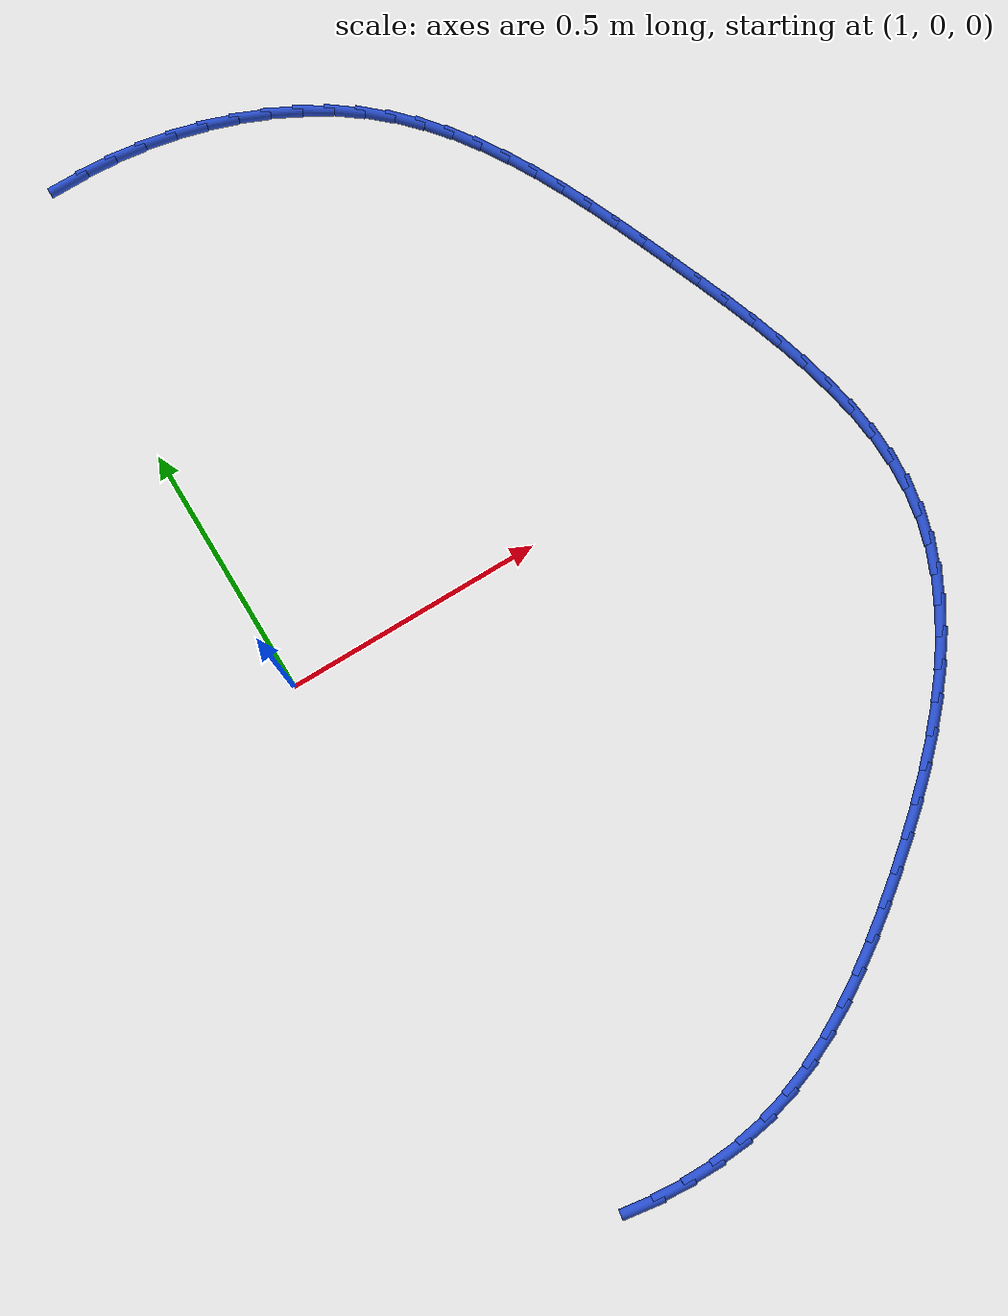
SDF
<sdf version="1.6">
 <world name="default">
  <model name="ground_plane">
   <static>1</static>
   <link name="link">
    <collision name="collision">
     <geometry><plane><normal>0 0 1</normal><size>100 100</size></plane></geometry>
     <surface><friction><ode><mu>100</mu><mu2>50</mu2></ode></friction></surface>
    </collision>
    <visual name="visual">
     <cast_shadows>0</cast_shadows>
     <geometry><plane><normal>0 0 1</normal><size>100 100</size></plane></geometry>
     <material>
      <script><uri>file://media/materials/scripts/gazebo.material</uri><name>Gazebo/WhiteGlow</name></script>
     </material>
    </visual>
   </link>
  </model>
  <model name="line">
   <link name="link_28">
    <pose>1.1172400116789178 1.0537246112168637 0.01 0 1.57 0.0035852691230217415</pose>
    <collision name="collision">
     <geometry><cylinder><radius>0.01</radius><length>0.08</length></cylinder></geometry>
    </collision>
    <visual name="visual">
     <material>
      <script><name>Gazebo/Blue</name><uri>file://media/materials/scripts/gazebo.material</uri></script>
     </material>
     <geometry><cylinder><radius>0.01</radius><length>0.08</length></cylinder></geometry>
    </visual>
   </link>
   <link name="link_29">
    <pose>1.1777942185444272 1.0539417152752382 0.01 0 1.57 -0.06503239241957477</pose>
    <collision name="collision">
     <geometry><cylinder><radius>0.01</radius><length>0.08</length></cylinder></geometry>
    </collision>
    <visual name="visual">
     <material>
      <script><name>Gazebo/Blue</name><uri>file://media/materials/scripts/gazebo.material</uri></script>
     </material>
     <geometry><cylinder><radius>0.01</radius><length>0.08</length></cylinder></geometry>
    </visual>
   </link>
   <link name="link_30">
    <pose>1.2388131846001103 1.0499679023169854 0.01 0 1.57 -0.1325438327340821</pose>
    <collision name="collision">
     <geometry><cylinder><radius>0.01</radius><length>0.08</length></cylinder></geometry>
    </collision>
    <visual name="visual">
     <material>
      <script><name>Gazebo/Blue</name><uri>file://media/materials/scripts/gazebo.material</uri></script>
     </material>
     <geometry><cylinder><radius>0.01</radius><length>0.08</length></cylinder></geometry>
    </visual>
   </link>
   <link name="link_31">
    <pose>1.2998302288446029 1.0418327745738611 0.01 0 1.57 -0.19960080344697206</pose>
    <collision name="collision">
     <geometry><cylinder><radius>0.01</radius><length>0.08</length></cylinder></geometry>
    </collision>
    <visual name="visual">
     <material>
      <script><name>Gazebo/Blue</name><uri>file://media/materials/scripts/gazebo.material</uri></script>
     </material>
     <geometry><cylinder><radius>0.01</radius><length>0.08</length></cylinder></geometry>
    </visual>
   </link>
   <link name="link_32">
    <pose>1.3603371133130329 1.029592566507478 0.01 0 1.57 -0.26726753782701423</pose>
    <collision name="collision">
     <geometry><cylinder><radius>0.01</radius><length>0.08</length></cylinder></geometry>
    </collision>
    <visual name="visual">
     <material>
      <script><name>Gazebo/Blue</name><uri>file://media/materials/scripts/gazebo.material</uri></script>
     </material>
     <geometry><cylinder><radius>0.01</radius><length>0.08</length></cylinder></geometry>
    </visual>
   </link>
   <link name="link_33">
    <pose>1.4198256000405278 1.01330351257945 0.01 0 1.57 -0.33659823628969554</pose>
    <collision name="collision">
     <geometry><cylinder><radius>0.01</radius><length>0.08</length></cylinder></geometry>
    </collision>
    <visual name="visual">
     <material>
      <script><name>Gazebo/Blue</name><uri>file://media/materials/scripts/gazebo.material</uri></script>
     </material>
     <geometry><cylinder><radius>0.01</radius><length>0.08</length></cylinder></geometry>
    </visual>
   </link>
   <link name="link_34">
    <pose>1.477787451062216 0.9930218472513902 0.01 0 1.57 -0.4086521698412608</pose>
    <collision name="collision">
     <geometry><cylinder><radius>0.01</radius><length>0.08</length></cylinder></geometry>
    </collision>
    <visual name="visual">
     <material>
      <script><name>Gazebo/Blue</name><uri>file://media/materials/scripts/gazebo.material</uri></script>
     </material>
     <geometry><cylinder><radius>0.01</radius><length>0.08</length></cylinder></geometry>
    </visual>
   </link>
   <link name="link_35">
    <pose>1.5337144284132251 0.9688038049849123 0.01 0 1.57 -0.48449866051231494</pose>
    <collision name="collision">
     <geometry><cylinder><radius>0.01</radius><length>0.08</length></cylinder></geometry>
    </collision>
    <visual name="visual">
     <material>
      <script><name>Gazebo/Blue</name><uri>file://media/materials/scripts/gazebo.material</uri></script>
     </material>
     <geometry><cylinder><radius>0.01</radius><length>0.08</length></cylinder></geometry>
    </visual>
   </link>
   <link name="link_36">
    <pose>1.5870982941286822 0.9407056202416296 0.01 0 1.57 -0.565204867048053</pose>
    <collision name="collision">
     <geometry><cylinder><radius>0.01</radius><length>0.08</length></cylinder></geometry>
    </collision>
    <visual name="visual">
     <material>
      <script><name>Gazebo/Blue</name><uri>file://media/materials/scripts/gazebo.material</uri></script>
     </material>
     <geometry><cylinder><radius>0.01</radius><length>0.08</length></cylinder></geometry>
    </visual>
   </link>
   <link name="link_37">
    <pose>1.6374308102437158 0.9087835274831554 0.01 0 1.57 -0.651796633137927</pose>
    <collision name="collision">
     <geometry><cylinder><radius>0.01</radius><length>0.08</length></cylinder></geometry>
    </collision>
    <visual name="visual">
     <material>
      <script><name>Gazebo/Blue</name><uri>file://media/materials/scripts/gazebo.material</uri></script>
     </material>
     <geometry><cylinder><radius>0.01</radius><length>0.08</length></cylinder></geometry>
    </visual>
   </link>
   <link name="link_38">
    <pose>1.6842037396981995 0.8730937614307996 0.01 0 1.57 -0.7427816068910535</pose>
    <collision name="collision">
     <geometry><cylinder><radius>0.01</radius><length>0.08</length></cylinder></geometry>
    </collision>
    <visual name="visual">
     <material>
      <script><name>Gazebo/Blue</name><uri>file://media/materials/scripts/gazebo.material</uri></script>
     </material>
     <geometry><cylinder><radius>0.01</radius><length>0.08</length></cylinder></geometry>
    </visual>
   </link>
   <link name="link_39">
    <pose>1.7270658575130324 0.8337376252284259 0.01 0 1.57 -0.8287641162457343</pose>
    <collision name="collision">
     <geometry><cylinder><radius>0.01</radius><length>0.08</length></cylinder></geometry>
    </collision>
    <visual name="visual">
     <material>
      <script><name>Gazebo/Blue</name><uri>file://media/materials/scripts/gazebo.material</uri></script>
     </material>
     <geometry><cylinder><radius>0.01</radius><length>0.08</length></cylinder></geometry>
    </visual>
   </link>
   <link name="link_40">
    <pose>1.7662605294052496 0.7909870921018738 0.01 0 1.57 -0.9061773362252878</pose>
    <collision name="collision">
     <geometry><cylinder><radius>0.01</radius><length>0.08</length></cylinder></geometry>
    </collision>
    <visual name="visual">
     <material>
      <script><name>Gazebo/Blue</name><uri>file://media/materials/scripts/gazebo.material</uri></script>
     </material>
     <geometry><cylinder><radius>0.01</radius><length>0.08</length></cylinder></geometry>
    </visual>
   </link>
   <link name="link_41">
    <pose>1.8021718454341253 0.7451545285007293 0.01 0 1.57 -0.974146964059037</pose>
    <collision name="collision">
     <geometry><cylinder><radius>0.01</radius><length>0.08</length></cylinder></geometry>
    </collision>
    <visual name="visual">
     <material>
      <script><name>Gazebo/Blue</name><uri>file://media/materials/scripts/gazebo.material</uri></script>
     </material>
     <geometry><cylinder><radius>0.01</radius><length>0.08</length></cylinder></geometry>
    </visual>
   </link>
   <link name="link_42">
    <pose>1.835183895658933 0.6965523008745764 0.01 0 1.57 -1.0323786310216865</pose>
    <collision name="collision">
     <geometry><cylinder><radius>0.01</radius><length>0.08</length></cylinder></geometry>
    </collision>
    <visual name="visual">
     <material>
      <script><name>Gazebo/Blue</name><uri>file://media/materials/scripts/gazebo.material</uri></script>
     </material>
     <geometry><cylinder><radius>0.01</radius><length>0.08</length></cylinder></geometry>
    </visual>
   </link>
   <link name="link_43">
    <pose>1.8656807701389468 0.6454927756730011 0.01 0 1.57 -1.0809841904871664</pose>
    <collision name="collision">
     <geometry><cylinder><radius>0.01</radius><length>0.08</length></cylinder></geometry>
    </collision>
    <visual name="visual">
     <material>
      <script><name>Gazebo/Blue</name><uri>file://media/materials/scripts/gazebo.material</uri></script>
     </material>
     <geometry><cylinder><radius>0.01</radius><length>0.08</length></cylinder></geometry>
    </visual>
   </link>
   <link name="link_44">
    <pose>1.8940465589334397 0.5922883193455887 0.01 0 1.57 -1.1203120319693236</pose>
    <collision name="collision">
     <geometry><cylinder><radius>0.01</radius><length>0.08</length></cylinder></geometry>
    </collision>
    <visual name="visual">
     <material>
      <script><name>Gazebo/Blue</name><uri>file://media/materials/scripts/gazebo.material</uri></script>
     </material>
     <geometry><cylinder><radius>0.01</radius><length>0.08</length></cylinder></geometry>
    </visual>
   </link>
   <link name="link_45">
    <pose>1.920665352101686 0.537251298341924 0.01 0 1.57 -1.1508112717224022</pose>
    <collision name="collision">
     <geometry><cylinder><radius>0.01</radius><length>0.08</length></cylinder></geometry>
    </collision>
    <visual name="visual">
     <material>
      <script><name>Gazebo/Blue</name><uri>file://media/materials/scripts/gazebo.material</uri></script>
     </material>
     <geometry><cylinder><radius>0.01</radius><length>0.08</length></cylinder></geometry>
    </visual>
   </link>
   <link name="link_46">
    <pose>1.9459212397029593 0.48069407911159245 0.01 0 1.57 -1.172936576285383</pose>
    <collision name="collision">
     <geometry><cylinder><radius>0.01</radius><length>0.08</length></cylinder></geometry>
    </collision>
    <visual name="visual">
     <material>
      <script><name>Gazebo/Blue</name><uri>file://media/materials/scripts/gazebo.material</uri></script>
     </material>
     <geometry><cylinder><radius>0.01</radius><length>0.08</length></cylinder></geometry>
    </visual>
   </link>
   <link name="link_47">
    <pose>1.9701983117965334 0.42292902810417937 0.01 0 1.57 -1.1870883013020772</pose>
    <collision name="collision">
     <geometry><cylinder><radius>0.01</radius><length>0.08</length></cylinder></geometry>
    </collision>
    <visual name="visual">
     <material>
      <script><name>Gazebo/Blue</name><uri>file://media/materials/scripts/gazebo.material</uri></script>
     </material>
     <geometry><cylinder><radius>0.01</radius><length>0.08</length></cylinder></geometry>
    </visual>
   </link>
   <link name="link_48">
    <pose>1.9938806584416828 0.36426851176927005 0.01 0 1.57 -1.1938681274654817</pose>
    <collision name="collision">
     <geometry><cylinder><radius>0.01</radius><length>0.08</length></cylinder></geometry>
    </collision>
    <visual name="visual">
     <material>
      <script><name>Gazebo/Blue</name><uri>file://media/materials/scripts/gazebo.material</uri></script>
     </material>
     <geometry><cylinder><radius>0.01</radius><length>0.08</length></cylinder></geometry>
    </visual>
   </link>
   <link name="link_49">
    <pose>2.0173337965936384 0.30502175570581874 0.01 0 1.57 -1.2004947225875473</pose>
    <collision name="collision">
     <geometry><cylinder><radius>0.01</radius><length>0.08</length></cylinder></geometry>
    </collision>
    <visual name="visual">
     <material>
      <script><name>Gazebo/Blue</name><uri>file://media/materials/scripts/gazebo.material</uri></script>
     </material>
     <geometry><cylinder><radius>0.01</radius><length>0.08</length></cylinder></geometry>
    </visual>
   </link>
   <link name="link_50">
    <pose>2.040471205984698 0.24542154264175445 0.01 0 1.57 -1.2143152229437373</pose>
    <collision name="collision">
     <geometry><cylinder><radius>0.01</radius><length>0.08</length></cylinder></geometry>
    </collision>
    <visual name="visual">
     <material>
      <script><name>Gazebo/Blue</name><uri>file://media/materials/scripts/gazebo.material</uri></script>
     </material>
     <geometry><cylinder><radius>0.01</radius><length>0.08</length></cylinder></geometry>
    </visual>
   </link>
   <link name="link_51">
    <pose>2.0627400733277024 0.1856218016723013 0.01 0 1.57 -1.2359245078357666</pose>
    <collision name="collision">
     <geometry><cylinder><radius>0.01</radius><length>0.08</length></cylinder></geometry>
    </collision>
    <visual name="visual">
     <material>
      <script><name>Gazebo/Blue</name><uri>file://media/materials/scripts/gazebo.material</uri></script>
     </material>
     <geometry><cylinder><radius>0.01</radius><length>0.08</length></cylinder></geometry>
    </visual>
   </link>
   <link name="link_52">
    <pose>2.083566160210444 0.1257728387439956 0.01 0 1.57 -1.2658108238837273</pose>
    <collision name="collision">
     <geometry><cylinder><radius>0.01</radius><length>0.08</length></cylinder></geometry>
    </collision>
    <visual name="visual">
     <material>
      <script><name>Gazebo/Blue</name><uri>file://media/materials/scripts/gazebo.material</uri></script>
     </material>
     <geometry><cylinder><radius>0.01</radius><length>0.08</length></cylinder></geometry>
    </visual>
   </link>
   <link name="link_53">
    <pose>2.102375228220706 0.06602495980337322 0.01 0 1.57 -1.3046773270917311</pose>
    <collision name="collision">
     <geometry><cylinder><radius>0.01</radius><length>0.08</length></cylinder></geometry>
    </collision>
    <visual name="visual">
     <material>
      <script><name>Gazebo/Blue</name><uri>file://media/materials/scripts/gazebo.material</uri></script>
     </material>
     <geometry><cylinder><radius>0.01</radius><length>0.08</length></cylinder></geometry>
    </visual>
   </link>
   <link name="link_54">
    <pose>2.1185930389462797 0.006528470796970345 0.01 0 1.57 -1.3534155619207533</pose>
    <collision name="collision">
     <geometry><cylinder><radius>0.01</radius><length>0.08</length></cylinder></geometry>
    </collision>
    <visual name="visual">
     <material>
      <script><name>Gazebo/Blue</name><uri>file://media/materials/scripts/gazebo.material</uri></script>
     </material>
     <geometry><cylinder><radius>0.01</radius><length>0.08</length></cylinder></geometry>
    </visual>
   </link>
   <link name="link_55">
    <pose>2.1316453539749527 -0.05256632232867699 0.01 0 1.57 -1.4130449982840714</pose>
    <collision name="collision">
     <geometry><cylinder><radius>0.01</radius><length>0.08</length></cylinder></geometry>
    </collision>
    <visual name="visual">
     <material>
      <script><name>Gazebo/Blue</name><uri>file://media/materials/scripts/gazebo.material</uri></script>
     </material>
     <geometry><cylinder><radius>0.01</radius><length>0.08</length></cylinder></geometry>
    </visual>
   </link>
   <link name="link_56">
    <pose>2.1409579348945127 -0.11110911362703235 0.01 0 1.57 -1.4845899277953738</pose>
    <collision name="collision">
     <geometry><cylinder><radius>0.01</radius><length>0.08</length></cylinder></geometry>
    </collision>
    <visual name="visual">
     <material>
      <script><name>Gazebo/Blue</name><uri>file://media/materials/scripts/gazebo.material</uri></script>
     </material>
     <geometry><cylinder><radius>0.01</radius><length>0.08</length></cylinder></geometry>
    </visual>
   </link>
   <link name="link_57">
    <pose>2.145956543292748 -0.16894959715156077 0.01 0 1.57 -1.5688591193334</pose>
    <collision name="collision">
     <geometry><cylinder><radius>0.01</radius><length>0.08</length></cylinder></geometry>
    </collision>
    <visual name="visual">
     <material>
      <script><name>Gazebo/Blue</name><uri>file://media/materials/scripts/gazebo.material</uri></script>
     </material>
     <geometry><cylinder><radius>0.01</radius><length>0.08</length></cylinder></geometry>
    </visual>
   </link>
   <link name="link_58">
    <pose>2.1460669407574464 -0.22593746695572475 0.01 0 1.57 1.4754879165834447</pose>
    <collision name="collision">
     <geometry><cylinder><radius>0.01</radius><length>0.08</length></cylinder></geometry>
    </collision>
    <visual name="visual">
     <material>
      <script><name>Gazebo/Blue</name><uri>file://media/materials/scripts/gazebo.material</uri></script>
     </material>
     <geometry><cylinder><radius>0.01</radius><length>0.08</length></cylinder></geometry>
    </visual>
   </link>
   <link name="link_59">
    <pose>2.140714888876396 -0.28192241709298965 0.01 0 1.57 1.3663212917641463</pose>
    <collision name="collision">
     <geometry><cylinder><radius>0.01</radius><length>0.08</length></cylinder></geometry>
    </collision>
    <visual name="visual">
     <material>
      <script><name>Gazebo/Blue</name><uri>file://media/materials/scripts/gazebo.material</uri></script>
     </material>
     <geometry><cylinder><radius>0.01</radius><length>0.08</length></cylinder></geometry>
    </visual>
   </link>
   <link name="link_60">
    <pose>2.1293438463402734 -0.33675612559606066 0.01 0 1.57 1.2559804873482274</pose>
    <collision name="collision">
     <geometry><cylinder><radius>0.01</radius><length>0.08</length></cylinder></geometry>
    </collision>
    <visual name="visual">
     <material>
      <script><name>Gazebo/Blue</name><uri>file://media/materials/scripts/gazebo.material</uri></script>
     </material>
     <geometry><cylinder><radius>0.01</radius><length>0.08</length></cylinder></geometry>
    </visual>
   </link>
   <link name="link_61">
    <pose>2.1118925970072704 -0.3903458001997081 0.01 0 1.57 1.1559003859242898</pose>
    <collision name="collision">
     <geometry><cylinder><radius>0.01</radius><length>0.08</length></cylinder></geometry>
    </collision>
    <visual name="visual">
     <material>
      <script><name>Gazebo/Blue</name><uri>file://media/materials/scripts/gazebo.material</uri></script>
     </material>
     <geometry><cylinder><radius>0.01</radius><length>0.08</length></cylinder></geometry>
    </visual>
   </link>
   <link name="link_62">
    <pose>2.0888499156408242 -0.44266030678391 0.01 0 1.57 1.0670446513023184</pose>
    <collision name="collision">
     <geometry><cylinder><radius>0.01</radius><length>0.08</length></cylinder></geometry>
    </collision>
    <visual name="visual">
     <material>
      <script><name>Gazebo/Blue</name><uri>file://media/materials/scripts/gazebo.material</uri></script>
     </material>
     <geometry><cylinder><radius>0.01</radius><length>0.08</length></cylinder></geometry>
    </visual>
   </link>
   <link name="link_63">
    <pose>2.060733244829968 -0.4936717251089796 0.01 0 1.57 0.9890494430428098</pose>
    <collision name="collision">
     <geometry><cylinder><radius>0.01</radius><length>0.08</length></cylinder></geometry>
    </collision>
    <visual name="visual">
     <material>
      <script><name>Gazebo/Blue</name><uri>file://media/materials/scripts/gazebo.material</uri></script>
     </material>
     <geometry><cylinder><radius>0.01</radius><length>0.08</length></cylinder></geometry>
    </visual>
   </link>
   <link name="link_64">
    <pose>2.028060027163735 -0.5433521349352278 0.01 0 1.57 0.9210833589606574</pose>
    <collision name="collision">
     <geometry><cylinder><radius>0.01</radius><length>0.08</length></cylinder></geometry>
    </collision>
    <visual name="visual">
     <material>
      <script><name>Gazebo/Blue</name><uri>file://media/materials/scripts/gazebo.material</uri></script>
     </material>
     <geometry><cylinder><radius>0.01</radius><length>0.08</length></cylinder></geometry>
    </visual>
   </link>
   <link name="link_65">
    <pose>1.991347705231159 -0.5916736160229675 0.01 0 1.57 0.8621172556394713</pose>
    <collision name="collision">
     <geometry><cylinder><radius>0.01</radius><length>0.08</length></cylinder></geometry>
    </collision>
    <visual name="visual">
     <material>
      <script><name>Gazebo/Blue</name><uri>file://media/materials/scripts/gazebo.material</uri></script>
     </material>
     <geometry><cylinder><radius>0.01</radius><length>0.08</length></cylinder></geometry>
    </visual>
   </link>
   <link name="link_66">
    <pose>1.9511137216212737 -0.638608248132511 0.01 0 1.57 0.8110990141882254</pose>
    <collision name="collision">
     <geometry><cylinder><radius>0.01</radius><length>0.08</length></cylinder></geometry>
    </collision>
    <visual name="visual">
     <material>
      <script><name>Gazebo/Blue</name><uri>file://media/materials/scripts/gazebo.material</uri></script>
     </material>
     <geometry><cylinder><radius>0.01</radius><length>0.08</length></cylinder></geometry>
    </visual>
   </link>
   <link name="link_67">
    <pose>1.9078755189231145 -0.6841281110241696 0.01 0 1.57 0.7670509321162425</pose>
    <collision name="collision">
     <geometry><cylinder><radius>0.01</radius><length>0.08</length></cylinder></geometry>
    </collision>
    <visual name="visual">
     <material>
      <script><name>Gazebo/Blue</name><uri>file://media/materials/scripts/gazebo.material</uri></script>
     </material>
     <geometry><cylinder><radius>0.01</radius><length>0.08</length></cylinder></geometry>
    </visual>
   </link>
   <link name="link_68">
    <pose>1.8621505397257139 -0.7282052844582567 0.01 0 1.57 0.7291154761232793</pose>
    <collision name="collision">
     <geometry><cylinder><radius>0.01</radius><length>0.08</length></cylinder></geometry>
    </collision>
    <visual name="visual">
     <material>
      <script><name>Gazebo/Blue</name><uri>file://media/materials/scripts/gazebo.material</uri></script>
     </material>
     <geometry><cylinder><radius>0.01</radius><length>0.08</length></cylinder></geometry>
    </visual>
   </link>
   <link name="link_69">
    <pose>1.814456226618105 -0.7708118481950825 0.01 0 1.57 0.696571105423776</pose>
    <collision name="collision">
     <geometry><cylinder><radius>0.01</radius><length>0.08</length></cylinder></geometry>
    </collision>
    <visual name="visual">
     <material>
      <script><name>Gazebo/Blue</name><uri>file://media/materials/scripts/gazebo.material</uri></script>
     </material>
     <geometry><cylinder><radius>0.01</radius><length>0.08</length></cylinder></geometry>
    </visual>
   </link>
   <link name="link_70">
    <pose>1.7653100221893223 -0.811919881994961 0.01 0 1.57 0.6688332065625497</pose>
    <collision name="collision">
     <geometry><cylinder><radius>0.01</radius><length>0.08</length></cylinder></geometry>
    </collision>
    <visual name="visual">
     <material>
      <script><name>Gazebo/Blue</name><uri>file://media/materials/scripts/gazebo.material</uri></script>
     </material>
     <geometry><cylinder><radius>0.01</radius><length>0.08</length></cylinder></geometry>
    </visual>
   </link>
   <link name="link_71">
    <pose>1.7152293690284008 -0.851501465618203 0.01 0 1.57 0.6442504277151127</pose>
    <collision name="collision">
     <geometry><cylinder><radius>0.01</radius><length>0.08</length></cylinder></geometry>
    </collision>
    <visual name="visual">
     <material>
      <script><name>Gazebo/Blue</name><uri>file://media/materials/scripts/gazebo.material</uri></script>
     </material>
     <geometry><cylinder><radius>0.01</radius><length>0.08</length></cylinder></geometry>
    </visual>
   </link>
   <link name="link_72">
    <pose>1.6646682616709 -0.8894815269258082 0.01 0 1.57 0.6147144186458727</pose>
    <collision name="collision">
     <geometry><cylinder><radius>0.01</radius><length>0.08</length></cylinder></geometry>
    </collision>
    <visual name="visual">
     <material>
      <script><name>Gazebo/Blue</name><uri>file://media/materials/scripts/gazebo.material</uri></script>
     </material>
     <geometry><cylinder><radius>0.01</radius><length>0.08</length></cylinder></geometry>
    </visual>
   </link>
   <link name="link_73">
    <pose>1.6136730705530344 -0.925482064856003 0.01 0 1.57 0.5766418474375017</pose>
    <collision name="collision">
     <geometry><cylinder><radius>0.01</radius><length>0.08</length></cylinder></geometry>
    </collision>
    <visual name="visual">
     <material>
      <script><name>Gazebo/Blue</name><uri>file://media/materials/scripts/gazebo.material</uri></script>
     </material>
     <geometry><cylinder><radius>0.01</radius><length>0.08</length></cylinder></geometry>
    </visual>
   </link>
   <link name="link_74">
    <pose>1.5621289691666032 -0.9590052836224094 0.01 0 1.57 0.5294025341837303</pose>
    <collision name="collision">
     <geometry><cylinder><radius>0.01</radius><length>0.08</length></cylinder></geometry>
    </collision>
    <visual name="visual">
     <material>
      <script><name>Gazebo/Blue</name><uri>file://media/materials/scripts/gazebo.material</uri></script>
     </material>
     <geometry><cylinder><radius>0.01</radius><length>0.08</length></cylinder></geometry>
    </visual>
   </link>
   <link name="link_75">
    <pose>1.5099207325176836 -0.9895530913009765 0.01 0 1.57 0.47237355666562186</pose>
    <collision name="collision">
     <geometry><cylinder><radius>0.01</radius><length>0.08</length></cylinder></geometry>
    </collision>
    <visual name="visual">
     <material>
      <script><name>Gazebo/Blue</name><uri>file://media/materials/scripts/gazebo.material</uri></script>
     </material>
     <geometry><cylinder><radius>0.01</radius><length>0.08</length></cylinder></geometry>
    </visual>
   </link>
   <link name="link_76">
    <pose>1.4569331356123512 -1.0166273959676553 0.01 0 1.57 0.405053990852701</pose>
    <collision name="collision">
     <geometry><cylinder><radius>0.01</radius><length>0.08</length></cylinder></geometry>
    </collision>
    <visual name="visual">
     <material>
      <script><name>Gazebo/Blue</name><uri>file://media/materials/scripts/gazebo.material</uri></script>
     </material>
     <geometry><cylinder><radius>0.01</radius><length>0.08</length></cylinder></geometry>
    </visual>
   </link>
   <link name="link_77">
    <pose>1.403050953456683 -1.0397301056983952 0.01 0 1.57 0.3272443712853562</pose>
    <collision name="collision">
     <geometry><cylinder><radius>0.01</radius><length>0.08</length></cylinder></geometry>
    </collision>
    <visual name="visual">
     <material>
      <script><name>Gazebo/Blue</name><uri>file://media/materials/scripts/gazebo.material</uri></script>
     </material>
     <geometry><cylinder><radius>0.01</radius><length>0.08</length></cylinder></geometry>
    </visual>
   </link>
   <link name="link_78">
    <pose>1.3481589610567548 -1.058363128569147 0.01 0 1.57 0.23931120490799382</pose>
    <collision name="collision">
     <geometry><cylinder><radius>0.01</radius><length>0.08</length></cylinder></geometry>
    </collision>
    <visual name="visual">
     <material>
      <script><name>Gazebo/Blue</name><uri>file://media/materials/scripts/gazebo.material</uri></script>
     </material>
     <geometry><cylinder><radius>0.01</radius><length>0.08</length></cylinder></geometry>
    </visual>
   </link>
   <link name="link_79">
    <pose>1.292142745050644 -1.0720303448062063 0.01 0 1.57 0.14689582055101935</pose>
    <collision name="collision">
     <geometry><cylinder><radius>0.01</radius><length>0.08</length></cylinder></geometry>
    </collision>
    <visual name="visual">
     <material>
      <script><name>Gazebo/Blue</name><uri>file://media/materials/scripts/gazebo.material</uri></script>
     </material>
     <geometry><cylinder><radius>0.01</radius><length>0.08</length></cylinder></geometry>
    </visual>
   </link>
   <link name="link_80">
    <pose>1.2349911694883313 -1.0804865840605447 0.01 0 1.57 0.060074993632245305</pose>
    <collision name="collision">
     <geometry><cylinder><radius>0.01</radius><length>0.08</length></cylinder></geometry>
    </collision>
    <visual name="visual">
     <material>
      <script><name>Gazebo/Blue</name><uri>file://media/materials/scripts/gazebo.material</uri></script>
     </material>
     <geometry><cylinder><radius>0.01</radius><length>0.08</length></cylinder></geometry>
    </visual>
   </link>
   <link name="link_81">
    <pose>1.1768964649202007 -1.0839808276599836 0.01 0 1.57 -0.019735672378692795</pose>
    <collision name="collision">
     <geometry><cylinder><radius>0.01</radius><length>0.08</length></cylinder></geometry>
    </collision>
    <visual name="visual">
     <material>
      <script><name>Gazebo/Blue</name><uri>file://media/materials/scripts/gazebo.material</uri></script>
     </material>
     <geometry><cylinder><radius>0.01</radius><length>0.08</length></cylinder></geometry>
    </visual>
   </link>
   <link name="link_82">
    <pose>1.1180746210416825 -1.0828197882762112 0.01 0 1.57 -0.09259359226247826</pose>
    <collision name="collision">
     <geometry><cylinder><radius>0.01</radius><length>0.08</length></cylinder></geometry>
    </collision>
    <visual name="visual">
     <material>
      <script><name>Gazebo/Blue</name><uri>file://media/materials/scripts/gazebo.material</uri></script>
     </material>
     <geometry><cylinder><radius>0.01</radius><length>0.08</length></cylinder></geometry>
    </visual>
   </link>
   <link name="link_83">
    <pose>1.0587416275482038 -1.077310178580915 0.01 0 1.57 -0.15883452046600985</pose>
    <collision name="collision">
     <geometry><cylinder><radius>0.01</radius><length>0.08</length></cylinder></geometry>
    </collision>
    <visual name="visual">
     <material>
      <script><name>Gazebo/Blue</name><uri>file://media/materials/scripts/gazebo.material</uri></script>
     </material>
     <geometry><cylinder><radius>0.01</radius><length>0.08</length></cylinder></geometry>
    </visual>
   </link>
  </model>
 </world>
</sdf>
